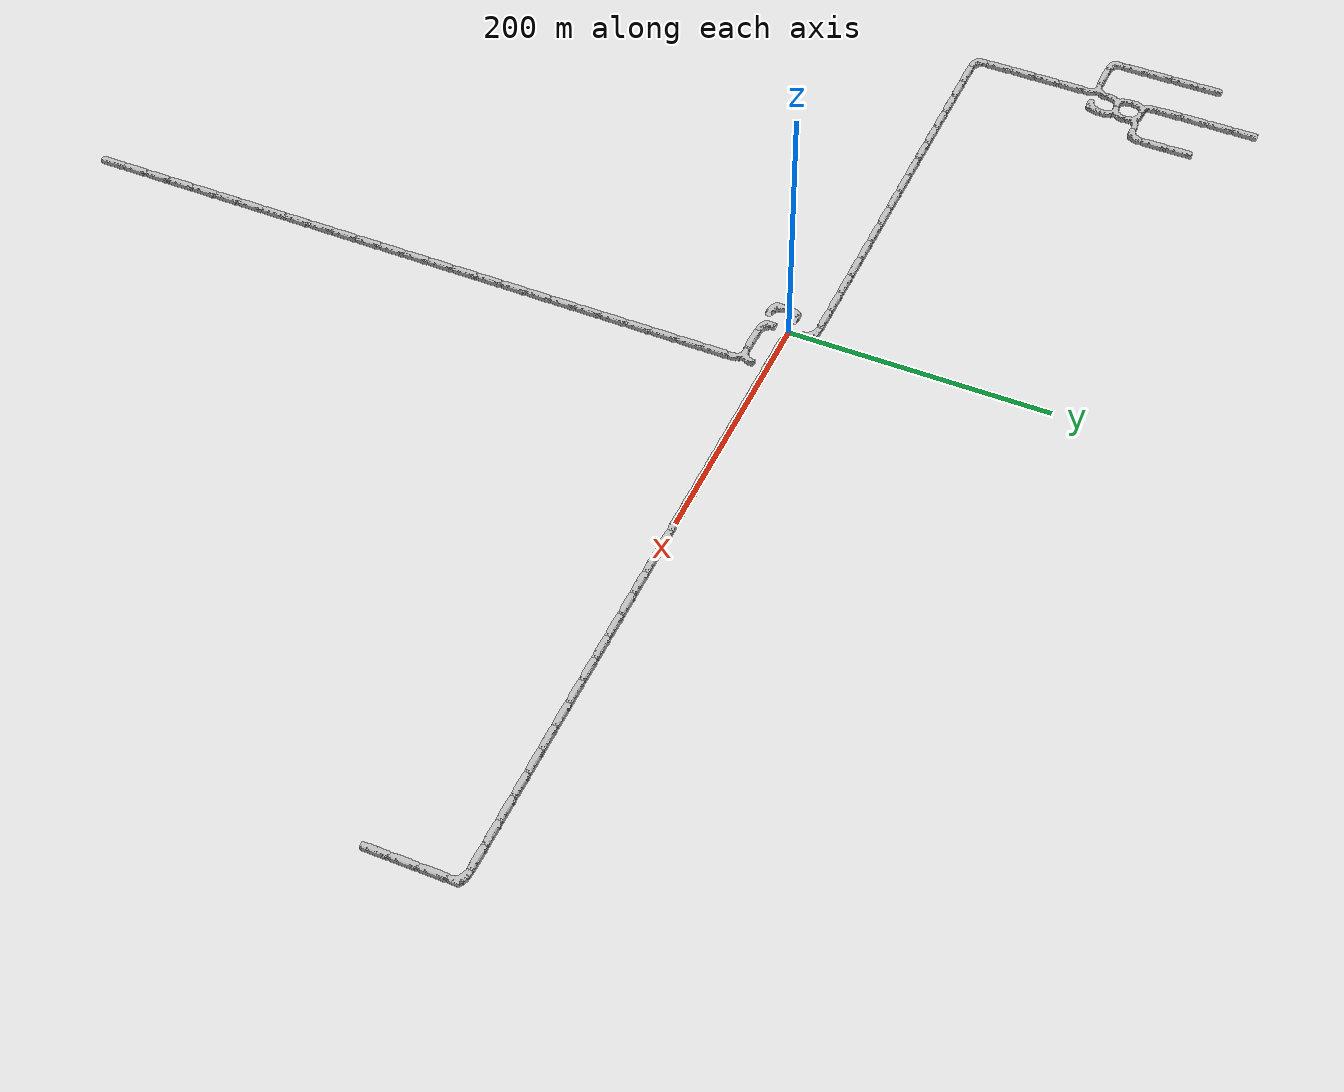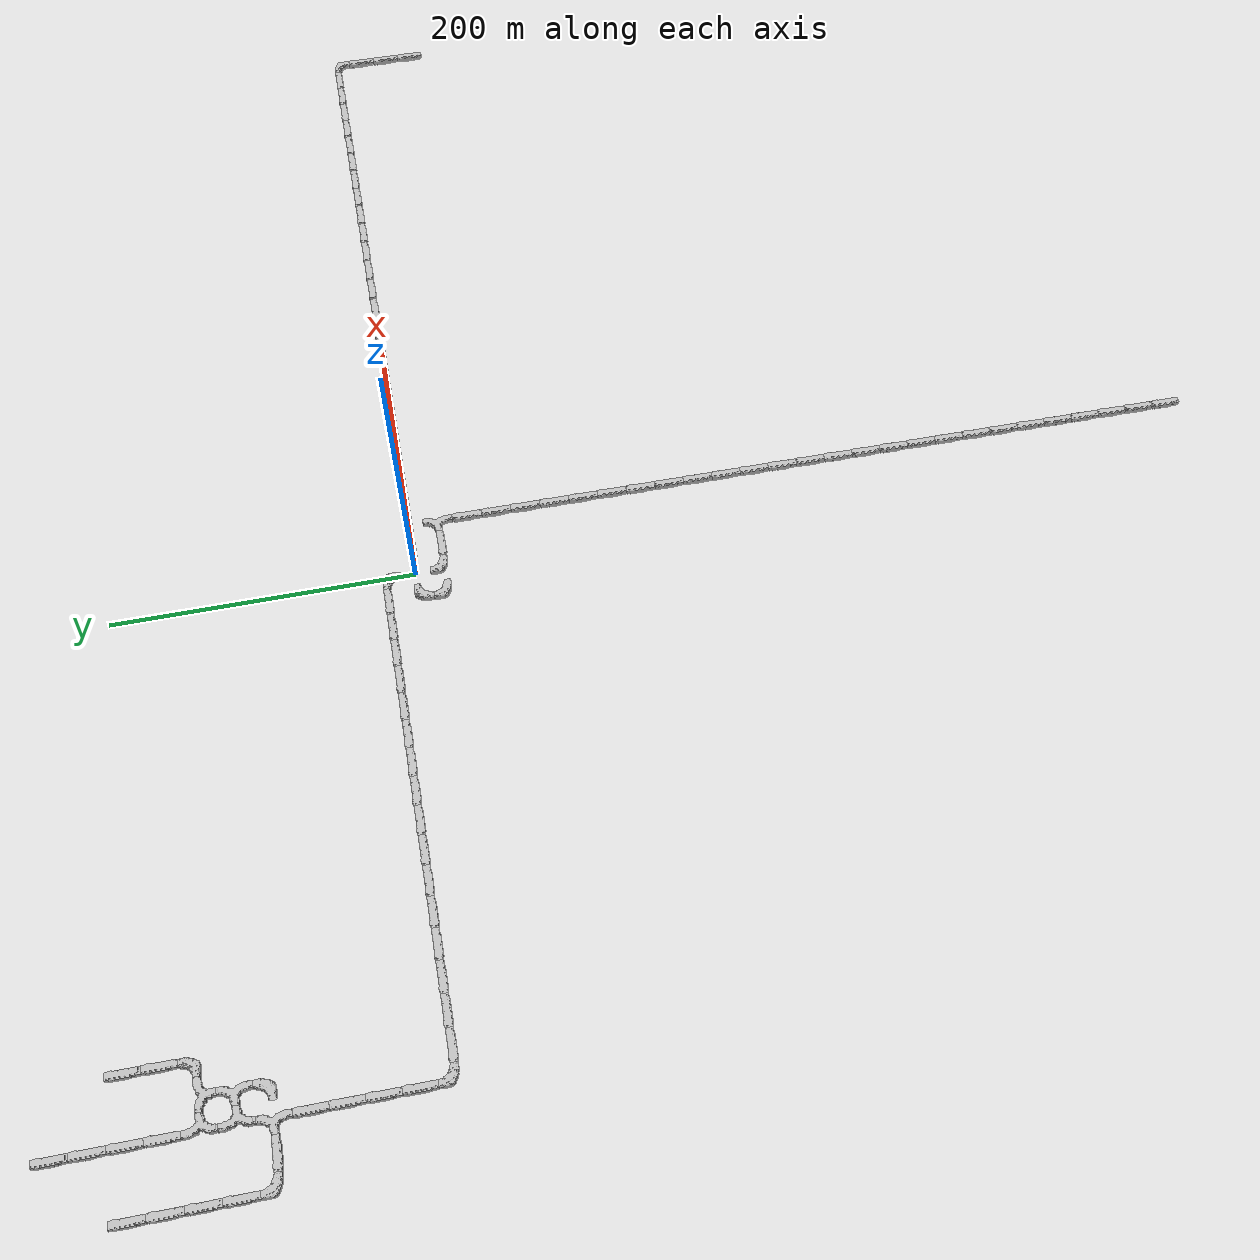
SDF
<sdf version="1.6">
 <world name="cave_2000_2">
  <include>
   <static>true</static>
   <name>cave_1_0</name>
   <pose>20 0 0 0 0 1.5707963267948966</pose>
   <uri>model://cave_straight_20m</uri>
  </include>
  <include>
   <static>true</static>
   <name>cave_2_0</name>
   <pose>40 0 0 0 0 1.5707963267948966</pose>
   <uri>model://cave_straight_20m</uri>
  </include>
  <include>
   <static>true</static>
   <name>cave_3_0</name>
   <pose>60 0 0 0 0 1.5707963267948966</pose>
   <uri>model://cave_straight_20m</uri>
  </include>
  <include>
   <static>true</static>
   <name>cave_4_0</name>
   <pose>80 0 0 0 0 1.5707963267948966</pose>
   <uri>model://cave_straight_20m</uri>
  </include>
  <include>
   <static>true</static>
   <name>cave_5_0</name>
   <pose>100 0 0 0 0 1.5707963267948966</pose>
   <uri>model://cave_straight_20m</uri>
  </include>
  <include>
   <static>true</static>
   <name>cave_6_0</name>
   <pose>120 0 0 0 0 1.5707963267948966</pose>
   <uri>model://cave_straight_20m</uri>
  </include>
  <include>
   <static>true</static>
   <name>cave_7_0</name>
   <pose>140 0 0 0 0 1.5707963267948966</pose>
   <uri>model://cave_straight_20m</uri>
  </include>
  <include>
   <static>true</static>
   <name>cave_8_0</name>
   <pose>160 0 0 0 0 1.5707963267948966</pose>
   <uri>model://cave_straight_20m</uri>
  </include>
  <include>
   <static>true</static>
   <name>cave_9_0</name>
   <pose>180 0 0 0 0 1.5707963267948966</pose>
   <uri>model://cave_straight_20m</uri>
  </include>
  <include>
   <static>true</static>
   <name>cave_10_0</name>
   <pose>200 0 0 0 0 1.5707963267948966</pose>
   <uri>model://cave_straight_20m</uri>
  </include>
  <include>
   <static>true</static>
   <name>cave_11_0</name>
   <pose>220 0 0 0 0 1.5707963267948966</pose>
   <uri>model://cave_straight_20m</uri>
  </include>
  <include>
   <static>true</static>
   <name>cave_12_0</name>
   <pose>240 0 0 0 0 1.5707963267948966</pose>
   <uri>model://cave_straight_20m</uri>
  </include>
  <include>
   <static>true</static>
   <name>cave_13_0</name>
   <pose>260 0 0 0 0 1.5707963267948966</pose>
   <uri>model://cave_straight_20m</uri>
  </include>
  <include>
   <static>true</static>
   <name>cave_14_0</name>
   <pose>280 0 0 0 0 1.5707963267948966</pose>
   <uri>model://cave_straight_20m</uri>
  </include>
  <include>
   <static>true</static>
   <name>cave_15_0</name>
   <pose>300 0 0 0 0 1.5707963267948966</pose>
   <uri>model://cave_straight_20m</uri>
  </include>
  <include>
   <static>true</static>
   <name>cave_16_0</name>
   <pose>320 0 0 0 0 1.5707963267948966</pose>
   <uri>model://cave_straight_20m</uri>
  </include>
  <include>
   <static>true</static>
   <name>cave_17_0</name>
   <pose>340 0 0 0 0 1.5707963267948966</pose>
   <uri>model://cave_straight_20m</uri>
  </include>
  <include>
   <static>true</static>
   <name>cave_18_0</name>
   <pose>360 0 0 0 0 1.5707963267948966</pose>
   <uri>model://cave_straight_20m</uri>
  </include>
  <include>
   <static>true</static>
   <name>cave_19_0</name>
   <pose>380 0 0 0 0 1.5707963267948966</pose>
   <uri>model://cave_straight_20m</uri>
  </include>
  <include>
   <static>true</static>
   <name>cave_20_0</name>
   <pose>400 0 0 0 0 1.5707963267948966</pose>
   <uri>model://cave_straight_20m</uri>
  </include>
  <include>
   <static>true</static>
   <name>cave_21_0</name>
   <pose>420 0 0 0 0 1.5707963267948966</pose>
   <uri>model://cave_straight_20m</uri>
  </include>
  <include>
   <static>true</static>
   <name>cave_22_0</name>
   <pose>440 0 0 0 0 1.5707963267948966</pose>
   <uri>model://cave_straight_20m</uri>
  </include>
  <include>
   <static>true</static>
   <name>cave_23_0</name>
   <pose>460 0 0 0 0 1.5707963267948966</pose>
   <uri>model://cave_straight_20m</uri>
  </include>
  <include>
   <static>true</static>
   <name>cave_24_0</name>
   <pose>480 0 0 0 0 1.5707963267948966</pose>
   <uri>model://cave_straight_20m</uri>
  </include>
  <include>
   <static>true</static>
   <name>cave_25_0</name>
   <pose>500 0 0 0 0 1.5707963267948966</pose>
   <uri>model://cave_straight_20m</uri>
  </include>
  <include>
   <static>true</static>
   <name>cave_26_0</name>
   <pose>520 0 0 0 0 3.141592653589793</pose>
   <uri>model://cave_L_20m</uri>
  </include>
  <include>
   <static>true</static>
   <name>cave_26_-1</name>
   <pose>520 -20 0 0 0 0.0</pose>
   <uri>model://cave_straight_20m</uri>
  </include>
  <include>
   <static>true</static>
   <name>cave_26_-2</name>
   <pose>520 -40 0 0 0 0.0</pose>
   <uri>model://cave_straight_20m</uri>
  </include>
  <include>
   <static>true</static>
   <name>cave_26_-3</name>
   <pose>520 -60 0 0 0 0.0</pose>
   <uri>model://cave_straight_20m</uri>
  </include>
  <include>
   <static>true</static>
   <name>cave_0_-1</name>
   <pose>0 -20 0 0 0 0.0</pose>
   <uri>model://cave_L_20m</uri>
  </include>
  <include>
   <static>true</static>
   <name>cave_1_-1</name>
   <pose>20 -20 0 0 0 1.5707963267948966</pose>
   <uri>model://cave_straight_20m</uri>
  </include>
  <include>
   <static>true</static>
   <name>cave_2_-1</name>
   <pose>40 -20 0 0 0 1.5707963267948966</pose>
   <uri>model://cave_3way_20m</uri>
  </include>
  <include>
   <static>true</static>
   <name>cave_2_-2</name>
   <pose>40 -40 0 0 0 0.0</pose>
   <uri>model://cave_straight_20m</uri>
  </include>
  <include>
   <static>true</static>
   <name>cave_2_-3</name>
   <pose>40 -60 0 0 0 0.0</pose>
   <uri>model://cave_straight_20m</uri>
  </include>
  <include>
   <static>true</static>
   <name>cave_2_-4</name>
   <pose>40 -80 0 0 0 0.0</pose>
   <uri>model://cave_straight_20m</uri>
  </include>
  <include>
   <static>true</static>
   <name>cave_2_-5</name>
   <pose>40 -100 0 0 0 0.0</pose>
   <uri>model://cave_straight_20m</uri>
  </include>
  <include>
   <static>true</static>
   <name>cave_2_-6</name>
   <pose>40 -120 0 0 0 0.0</pose>
   <uri>model://cave_straight_20m</uri>
  </include>
  <include>
   <static>true</static>
   <name>cave_2_-7</name>
   <pose>40 -140 0 0 0 0.0</pose>
   <uri>model://cave_straight_20m</uri>
  </include>
  <include>
   <static>true</static>
   <name>cave_2_-8</name>
   <pose>40 -160 0 0 0 0.0</pose>
   <uri>model://cave_straight_20m</uri>
  </include>
  <include>
   <static>true</static>
   <name>cave_2_-9</name>
   <pose>40 -180 0 0 0 0.0</pose>
   <uri>model://cave_straight_20m</uri>
  </include>
  <include>
   <static>true</static>
   <name>cave_2_-10</name>
   <pose>40 -200 0 0 0 0.0</pose>
   <uri>model://cave_straight_20m</uri>
  </include>
  <include>
   <static>true</static>
   <name>cave_2_-11</name>
   <pose>40 -220 0 0 0 0.0</pose>
   <uri>model://cave_straight_20m</uri>
  </include>
  <include>
   <static>true</static>
   <name>cave_2_-12</name>
   <pose>40 -240 0 0 0 0.0</pose>
   <uri>model://cave_straight_20m</uri>
  </include>
  <include>
   <static>true</static>
   <name>cave_2_-13</name>
   <pose>40 -260 0 0 0 0.0</pose>
   <uri>model://cave_straight_20m</uri>
  </include>
  <include>
   <static>true</static>
   <name>cave_2_-14</name>
   <pose>40 -280 0 0 0 0.0</pose>
   <uri>model://cave_straight_20m</uri>
  </include>
  <include>
   <static>true</static>
   <name>cave_2_-15</name>
   <pose>40 -300 0 0 0 0.0</pose>
   <uri>model://cave_straight_20m</uri>
  </include>
  <include>
   <static>true</static>
   <name>cave_2_-16</name>
   <pose>40 -320 0 0 0 0.0</pose>
   <uri>model://cave_straight_20m</uri>
  </include>
  <include>
   <static>true</static>
   <name>cave_2_-17</name>
   <pose>40 -340 0 0 0 0.0</pose>
   <uri>model://cave_straight_20m</uri>
  </include>
  <include>
   <static>true</static>
   <name>cave_2_-18</name>
   <pose>40 -360 0 0 0 0.0</pose>
   <uri>model://cave_straight_20m</uri>
  </include>
  <include>
   <static>true</static>
   <name>cave_2_-19</name>
   <pose>40 -380 0 0 0 0.0</pose>
   <uri>model://cave_straight_20m</uri>
  </include>
  <include>
   <static>true</static>
   <name>cave_2_-20</name>
   <pose>40 -400 0 0 0 0.0</pose>
   <uri>model://cave_straight_20m</uri>
  </include>
  <include>
   <static>true</static>
   <name>cave_2_-21</name>
   <pose>40 -420 0 0 0 0.0</pose>
   <uri>model://cave_straight_20m</uri>
  </include>
  <include>
   <static>true</static>
   <name>cave_2_-22</name>
   <pose>40 -440 0 0 0 0.0</pose>
   <uri>model://cave_straight_20m</uri>
  </include>
  <include>
   <static>true</static>
   <name>cave_2_-23</name>
   <pose>40 -460 0 0 0 0.0</pose>
   <uri>model://cave_straight_20m</uri>
  </include>
  <include>
   <static>true</static>
   <name>cave_2_-24</name>
   <pose>40 -480 0 0 0 0.0</pose>
   <uri>model://cave_straight_20m</uri>
  </include>
  <include>
   <static>true</static>
   <name>cave_2_-25</name>
   <pose>40 -500 0 0 0 0.0</pose>
   <uri>model://cave_straight_20m</uri>
  </include>
  <include>
   <static>true</static>
   <name>cave_2_-26</name>
   <pose>40 -520 0 0 0 0.0</pose>
   <uri>model://cave_straight_20m</uri>
  </include>
  <include>
   <static>true</static>
   <name>cave_2_-27</name>
   <pose>40 -540 0 0 0 0.0</pose>
   <uri>model://cave_straight_20m</uri>
  </include>
  <include>
   <static>true</static>
   <name>cave_-1_0</name>
   <pose>-20 0 0 0 0 -1.5707963267948966</pose>
   <uri>model://cave_L_20m</uri>
  </include>
  <include>
   <static>true</static>
   <name>cave_-1_-1</name>
   <pose>-20 -20 0 0 0 0.0</pose>
   <uri>model://cave_L_20m</uri>
  </include>
  <include>
   <static>true</static>
   <name>cave_0_1</name>
   <pose>0 20 0 0 0 3.141592653589793</pose>
   <uri>model://cave_L_20m</uri>
  </include>
  <include>
   <static>true</static>
   <name>cave_-1_1</name>
   <pose>-20 20 0 0 0 1.5707963267948966</pose>
   <uri>model://cave_straight_20m</uri>
  </include>
  <include>
   <static>true</static>
   <name>cave_-2_1</name>
   <pose>-40 20 0 0 0 1.5707963267948966</pose>
   <uri>model://cave_straight_20m</uri>
  </include>
  <include>
   <static>true</static>
   <name>cave_-3_1</name>
   <pose>-60 20 0 0 0 1.5707963267948966</pose>
   <uri>model://cave_straight_20m</uri>
  </include>
  <include>
   <static>true</static>
   <name>cave_-4_1</name>
   <pose>-80 20 0 0 0 1.5707963267948966</pose>
   <uri>model://cave_straight_20m</uri>
  </include>
  <include>
   <static>true</static>
   <name>cave_-5_1</name>
   <pose>-100 20 0 0 0 1.5707963267948966</pose>
   <uri>model://cave_straight_20m</uri>
  </include>
  <include>
   <static>true</static>
   <name>cave_-6_1</name>
   <pose>-120 20 0 0 0 1.5707963267948966</pose>
   <uri>model://cave_straight_20m</uri>
  </include>
  <include>
   <static>true</static>
   <name>cave_-7_1</name>
   <pose>-140 20 0 0 0 1.5707963267948966</pose>
   <uri>model://cave_straight_20m</uri>
  </include>
  <include>
   <static>true</static>
   <name>cave_-8_1</name>
   <pose>-160 20 0 0 0 1.5707963267948966</pose>
   <uri>model://cave_straight_20m</uri>
  </include>
  <include>
   <static>true</static>
   <name>cave_-9_1</name>
   <pose>-180 20 0 0 0 1.5707963267948966</pose>
   <uri>model://cave_straight_20m</uri>
  </include>
  <include>
   <static>true</static>
   <name>cave_-10_1</name>
   <pose>-200 20 0 0 0 1.5707963267948966</pose>
   <uri>model://cave_straight_20m</uri>
  </include>
  <include>
   <static>true</static>
   <name>cave_-11_1</name>
   <pose>-220 20 0 0 0 1.5707963267948966</pose>
   <uri>model://cave_straight_20m</uri>
  </include>
  <include>
   <static>true</static>
   <name>cave_-12_1</name>
   <pose>-240 20 0 0 0 1.5707963267948966</pose>
   <uri>model://cave_straight_20m</uri>
  </include>
  <include>
   <static>true</static>
   <name>cave_-13_1</name>
   <pose>-260 20 0 0 0 1.5707963267948966</pose>
   <uri>model://cave_straight_20m</uri>
  </include>
  <include>
   <static>true</static>
   <name>cave_-14_1</name>
   <pose>-280 20 0 0 0 1.5707963267948966</pose>
   <uri>model://cave_straight_20m</uri>
  </include>
  <include>
   <static>true</static>
   <name>cave_-15_1</name>
   <pose>-300 20 0 0 0 1.5707963267948966</pose>
   <uri>model://cave_straight_20m</uri>
  </include>
  <include>
   <static>true</static>
   <name>cave_-16_1</name>
   <pose>-320 20 0 0 0 1.5707963267948966</pose>
   <uri>model://cave_straight_20m</uri>
  </include>
  <include>
   <static>true</static>
   <name>cave_-17_1</name>
   <pose>-340 20 0 0 0 0.0</pose>
   <uri>model://cave_L_20m</uri>
  </include>
  <include>
   <static>true</static>
   <name>cave_-17_2</name>
   <pose>-340 40 0 0 0 0.0</pose>
   <uri>model://cave_straight_20m</uri>
  </include>
  <include>
   <static>true</static>
   <name>cave_-17_3</name>
   <pose>-340 60 0 0 0 0.0</pose>
   <uri>model://cave_straight_20m</uri>
  </include>
  <include>
   <static>true</static>
   <name>cave_-17_4</name>
   <pose>-340 80 0 0 0 0.0</pose>
   <uri>model://cave_straight_20m</uri>
  </include>
  <include>
   <static>true</static>
   <name>cave_-17_5</name>
   <pose>-340 100 0 0 0 0.0</pose>
   <uri>model://cave_straight_20m</uri>
  </include>
  <include>
   <static>true</static>
   <name>cave_-17_6</name>
   <pose>-340 120 0 0 0 1.5707963267948966</pose>
   <uri>model://cave_3way_20m</uri>
  </include>
  <include>
   <static>true</static>
   <name>cave_-18_6</name>
   <pose>-360 120 0 0 0 1.5707963267948966</pose>
   <uri>model://cave_straight_20m</uri>
  </include>
  <include>
   <static>true</static>
   <name>cave_-19_6</name>
   <pose>-380 120 0 0 0 0.0</pose>
   <uri>model://cave_L_20m</uri>
  </include>
  <include>
   <static>true</static>
   <name>cave_-19_7</name>
   <pose>-380 140 0 0 0 0.0</pose>
   <uri>model://cave_straight_20m</uri>
  </include>
  <include>
   <static>true</static>
   <name>cave_-19_8</name>
   <pose>-380 160 0 0 0 0.0</pose>
   <uri>model://cave_straight_20m</uri>
  </include>
  <include>
   <static>true</static>
   <name>cave_-19_9</name>
   <pose>-380 180 0 0 0 0.0</pose>
   <uri>model://cave_straight_20m</uri>
  </include>
  <include>
   <static>true</static>
   <name>cave_-19_10</name>
   <pose>-380 200 0 0 0 0.0</pose>
   <uri>model://cave_straight_20m</uri>
  </include>
  <include>
   <static>true</static>
   <name>cave_-17_7</name>
   <pose>-340 140 0 0 0 -1.5707963267948966</pose>
   <uri>model://cave_3way_20m</uri>
  </include>
  <include>
   <static>true</static>
   <name>cave_-16_7</name>
   <pose>-320 140 0 0 0 1.5707963267948966</pose>
   <uri>model://cave_3way_20m</uri>
  </include>
  <include>
   <static>true</static>
   <name>cave_-16_6</name>
   <pose>-320 120 0 0 0 1.5707963267948966</pose>
   <uri>model://cave_L_20m</uri>
  </include>
  <include>
   <static>true</static>
   <name>cave_-16_8</name>
   <pose>-320 160 0 0 0 3.141592653589793</pose>
   <uri>model://cave_3way_20m</uri>
  </include>
  <include>
   <static>true</static>
   <name>cave_-15_8</name>
   <pose>-300 160 0 0 0 1.5707963267948966</pose>
   <uri>model://cave_L_20m</uri>
  </include>
  <include>
   <static>true</static>
   <name>cave_-15_9</name>
   <pose>-300 180 0 0 0 0.0</pose>
   <uri>model://cave_straight_20m</uri>
  </include>
  <include>
   <static>true</static>
   <name>cave_-15_10</name>
   <pose>-300 200 0 0 0 0.0</pose>
   <uri>model://cave_straight_20m</uri>
  </include>
  <include>
   <static>true</static>
   <name>cave_-17_8</name>
   <pose>-340 160 0 0 0 -1.5707963267948966</pose>
   <uri>model://cave_3way_20m</uri>
  </include>
  <include>
   <static>true</static>
   <name>cave_-17_9</name>
   <pose>-340 180 0 0 0 0.0</pose>
   <uri>model://cave_straight_20m</uri>
  </include>
  <include>
   <static>true</static>
   <name>cave_-17_10</name>
   <pose>-340 200 0 0 0 0.0</pose>
   <uri>model://cave_straight_20m</uri>
  </include>
  <include>
   <static>true</static>
   <name>cave_-17_11</name>
   <pose>-340 220 0 0 0 0.0</pose>
   <uri>model://cave_straight_20m</uri>
  </include>
  <include>
   <static>true</static>
   <name>cave_-17_12</name>
   <pose>-340 240 0 0 0 0.0</pose>
   <uri>model://cave_straight_20m</uri>
  </include>
 </world>
</sdf>

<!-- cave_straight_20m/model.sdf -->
<sdf version="1.6">
  <model name="cave_straight_20m">
    <static>true</static>
    <link name="base">
      <pose>0 0 0 0 0 0</pose>
      <collision name="base_collision">
        <pose>0 0 0 0 0 0</pose>
        <geometry>
          <mesh>
            <uri>model://cave_straight_20m/meshes/cave_straight_20m.dae</uri>
          </mesh>
        </geometry>
        <surface>
          <contact>
             <collide_bitmask>0xffff</collide_bitmask>
          </contact>
          <friction>
            <ode>
              <mu>100</mu>
              <mu2>50</mu2>
            </ode>
          </friction>
        </surface>
      </collision>
      <visual name="base_visual">
        <pose>0 0 0 0 0 0</pose>
        <cast_shadows>false</cast_shadows>
        <geometry>
          <mesh>
            <uri>model://cave_straight_20m/meshes/cave_straight_20m.dae</uri>
          </mesh>
        </geometry>
      </visual>
    </link>
  </model>
</sdf>

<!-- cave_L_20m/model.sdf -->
<sdf version="1.6">
  <model name="cave_L_20m">
    <static>true</static>
    <link name="base">
      <pose>0 0 0 0 0 0</pose>
      <collision name="base_collision">
        <pose>0 0 0 0 0 0</pose>
        <geometry>
          <mesh>
            <uri>model://cave_L_20m/meshes/cave_L_20m.dae</uri>
          </mesh>
        </geometry>
        <surface>
          <contact>
             <collide_bitmask>0xffff</collide_bitmask>
          </contact>
          <friction>
            <ode>
              <mu>100</mu>
              <mu2>50</mu2>
            </ode>
          </friction>
        </surface>
      </collision>
      <visual name="base_visual">
        <pose>0 0 0 0 0 0</pose>
        <cast_shadows>false</cast_shadows>
        <geometry>
          <mesh>
            <uri>model://cave_L_20m/meshes/cave_L_20m.dae</uri>
          </mesh>
        </geometry>
      </visual>
    </link>
  </model>
</sdf>

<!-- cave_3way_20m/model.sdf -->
<sdf version="1.6">
  <model name="cave_3way_20m">
    <static>true</static>
    <link name="base">
      <pose>0 0 0 0 0 0</pose>
      <collision name="base_collision">
        <pose>0 0 0 0 0 0</pose>
        <geometry>
          <mesh>
            <uri>model://cave_3way_20m/meshes/cave_3way_20m.dae</uri>
          </mesh>
        </geometry>
        <surface>
          <contact>
             <collide_bitmask>0xffff</collide_bitmask>
          </contact>
          <friction>
            <ode>
              <mu>100</mu>
              <mu2>50</mu2>
            </ode>
          </friction>
        </surface>
      </collision>
      <visual name="base_visual">
        <cast_shadows>false</cast_shadows>
        <pose>0 0 0 0 0 0</pose>
        <geometry>
          <mesh>
            <uri>model://cave_3way_20m/meshes/cave_3way_20m.dae</uri>
          </mesh>
        </geometry>
      </visual>
    </link>
  </model>
</sdf>
